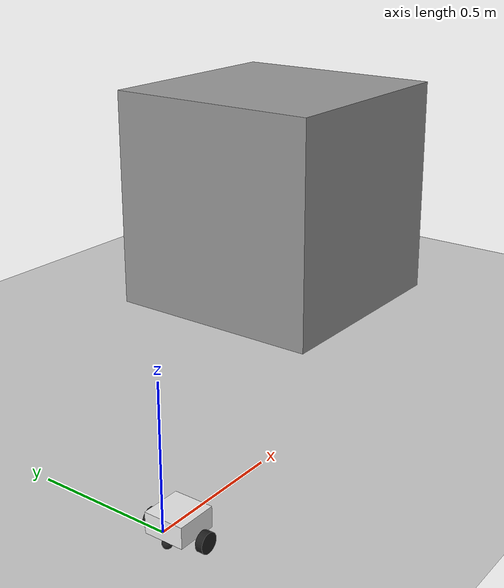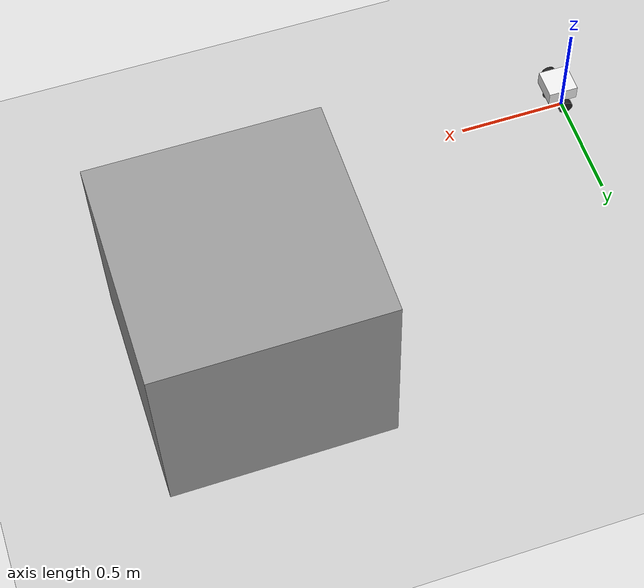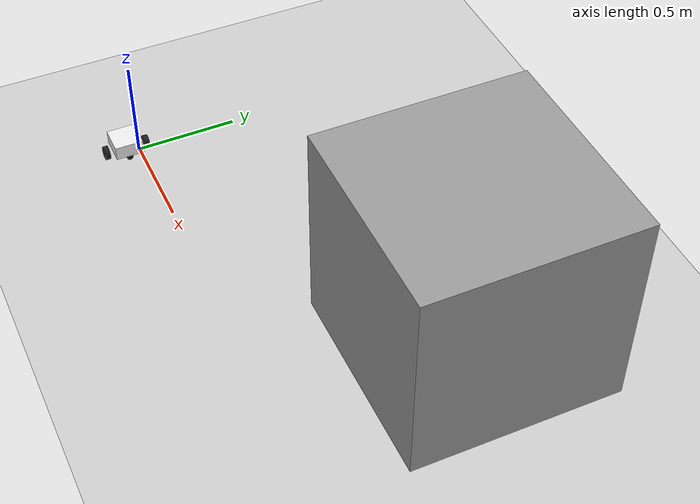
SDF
<sdf version="1.7">
 <world name="default">
  <light name="sun" type="directional">
   <pose>0 0 10 0 -0 0</pose>
   <diffuse>0.8 0.8 0.8 1</diffuse>
   <specular>0.2 0.2 0.2 1</specular>
   <attenuation>
    <range>1000</range>
    <constant>0.9</constant>
    <linear>0.01</linear>
    <quadratic>0.001</quadratic>
   </attenuation>
   <direction>-0.5 0.1 -0.9</direction>
   <spot><inner_angle>0</inner_angle><outer_angle>0</outer_angle><falloff>0</falloff></spot>
  </light>
  <model name="ground_plane">
   <static>1</static>
   <link name="link">
    <collision name="collision">
     <geometry><plane><normal>0 0 1</normal><size>100 100</size></plane></geometry>
     <surface>
      <contact><collide_bitmask>65535</collide_bitmask></contact>
      <friction><ode><mu>100</mu><mu2>50</mu2></ode></friction>
     </surface>
    </collision>
    <visual name="visual">
     <cast_shadows>0</cast_shadows>
     <geometry><plane><normal>0 0 1</normal><size>100 100</size></plane></geometry>
     <material>
      <script><uri>file://media/materials/scripts/gazebo.material</uri><name>Gazebo/Grey</name></script>
     </material>
    </visual>
   </link>
  </model>
  <gravity>0 0 -9.8</gravity>
  <magnetic_field>6e-06 2.3e-05 -4.2e-05</magnetic_field>
  <atmosphere type="adiabatic"/>
  <physics type="ode">
   <max_step_size>0.001</max_step_size>
   <real_time_factor>1</real_time_factor>
   <real_time_update_rate>1000</real_time_update_rate>
  </physics>
  <scene><ambient>0.4 0.4 0.4 1</ambient><background>0.7 0.7 0.7 1</background><shadows>1</shadows></scene>
  <audio><device>default</device></audio>
  <spherical_coordinates>
   <surface_model>EARTH_WGS84</surface_model>
   <latitude_deg>0</latitude_deg>
   <longitude_deg>0</longitude_deg>
   <elevation>0</elevation>
   <heading_deg>0</heading_deg>
  </spherical_coordinates>
  <model name="nanobot">
   <link name="base_link">
    <inertial>
     <pose>0 0 0.034591 0 -0 0</pose>
     <mass>0.922</mass>
     <inertia>
      <ixx>0.00190535</ixx>
      <ixy>0</ixy>
      <ixz>-4.33681e-19</ixz>
      <iyy>0.0019505</iyy>
      <iyz>0</iyz>
      <izz>0.00300658</izz>
     </inertia>
    </inertial>
    <collision name="base_link_fixed_joint_lump__body_link_collision">
     <pose>0 0 0.0355 0 -0 0</pose>
     <geometry><box><size>0.14 0.14 0.071</size></box></geometry>
    </collision>
    <collision name="base_link_fixed_joint_lump__back_caster_wheel_link_collision_1">
     <pose>-0.053125 0 -0.016875 0 -0 0</pose>
     <geometry><sphere><radius>0.016875</radius></sphere></geometry>
     <surface><friction><ode><mu>0.001</mu><mu2>0.001</mu2></ode></friction></surface>
    </collision>
    <collision name="base_link_fixed_joint_lump__front_caster_wheel_link_collision_2">
     <pose>0.053125 0 -0.016875 0 -0 0</pose>
     <geometry><sphere><radius>0.016875</radius></sphere></geometry>
     <surface><friction><ode><mu>0.001</mu><mu2>0.001</mu2></ode></friction></surface>
    </collision>
    <visual name="base_link_fixed_joint_lump__body_link_visual">
     <pose>0 0 0.0355 0 -0 0</pose>
     <geometry><box><size>0.14 0.14 0.071</size></box></geometry>
     <material>
      <script><name>Gazebo/White</name><uri>file://media/materials/scripts/gazebo.material</uri></script>
     </material>
    </visual>
    <visual name="base_link_fixed_joint_lump__back_caster_wheel_link_visual_1">
     <pose>-0.053125 0 -0.016875 0 -0 0</pose>
     <geometry><sphere><radius>0.016875</radius></sphere></geometry>
     <material>
      <script><name>Gazebo/Black</name><uri>file://media/materials/scripts/gazebo.material</uri></script>
     </material>
    </visual>
    <visual name="base_link_fixed_joint_lump__front_caster_wheel_link_visual_2">
     <pose>0.053125 0 -0.016875 0 -0 0</pose>
     <geometry><sphere><radius>0.016875</radius></sphere></geometry>
     <material>
      <script><name>Gazebo/Black</name><uri>file://media/materials/scripts/gazebo.material</uri></script>
     </material>
    </visual>
   </link>
   <joint name="left_wheel_joint" type="revolute">
    <pose relative_to="base_link">0 0.102 0 -1.5708 0 0</pose>
    <parent>base_link</parent>
    <child>left_wheel_link</child>
    <axis>
     <xyz>0 0 1</xyz>
     <limit><effort>100</effort><velocity>100</velocity><lower>-1e+16</lower><upper>1e+16</upper></limit>
     <dynamics><spring_reference>0</spring_reference><spring_stiffness>0</spring_stiffness></dynamics>
    </axis>
   </joint>
   <link name="left_wheel_link">
    <pose relative_to="left_wheel_joint">0 0 0 0 -0 0</pose>
    <inertial>
     <mass>0.028</mass>
     <inertia>
      <ixx>9.43177e-06</ixx>
      <ixy>0</ixy>
      <ixz>0</ixz>
      <iyy>9.43177e-06</iyy>
      <iyz>0</iyz>
      <izz>1.59469e-05</izz>
     </inertia>
    </inertial>
    <collision name="left_wheel_link_collision">
     <geometry><sphere><radius>0.03375</radius></sphere></geometry>
    </collision>
    <visual name="left_wheel_link_visual">
     <geometry><cylinder><length>0.025</length><radius>0.03375</radius></cylinder></geometry>
     <material>
      <script><name>Gazebo/Black</name><uri>file://media/materials/scripts/gazebo.material</uri></script>
     </material>
    </visual>
   </link>
   <joint name="right_wheel_joint" type="revolute">
    <pose relative_to="base_link">0 -0.102 0 1.5708 -0 0</pose>
    <parent>base_link</parent>
    <child>right_wheel_link</child>
    <axis>
     <xyz>0 0 -1</xyz>
     <limit><effort>100</effort><velocity>100</velocity><lower>-1e+16</lower><upper>1e+16</upper></limit>
     <dynamics><spring_reference>0</spring_reference><spring_stiffness>0</spring_stiffness></dynamics>
    </axis>
   </joint>
   <link name="right_wheel_link">
    <pose relative_to="right_wheel_joint">0 0 0 0 -0 0</pose>
    <inertial>
     <mass>0.028</mass>
     <inertia>
      <ixx>9.43177e-06</ixx>
      <ixy>0</ixy>
      <ixz>0</ixz>
      <iyy>9.43177e-06</iyy>
      <iyz>0</iyz>
      <izz>1.59469e-05</izz>
     </inertia>
    </inertial>
    <collision name="right_wheel_link_collision">
     <geometry><sphere><radius>0.03375</radius></sphere></geometry>
    </collision>
    <visual name="right_wheel_link_visual">
     <geometry><cylinder><length>0.025</length><radius>0.03375</radius></cylinder></geometry>
     <material>
      <script><name>Gazebo/Black</name><uri>file://media/materials/scripts/gazebo.material</uri></script>
     </material>
    </visual>
   </link>
   <static>0</static>
   <plugin name="gazebo_ros2_control" filename="libgazebo_ros2_control.so">
    <parameters>/home/ros_ws/install/nanobot_diffdrive/share/nanobot_diffdrive/config/gazebo_diffdrive_controllers.yaml</parameters>
   </plugin>
   <pose>1.9e-05 -0.063942 0.033744 5.7e-05 -0 -0.000336</pose>
  </model>
  <model name="unit_box">
   <pose>1.80232 0.872421 0.5 0 -0 0</pose>
   <link name="link">
    <inertial>
     <mass>1</mass>
     <inertia>
      <ixx>0.166667</ixx>
      <ixy>0</ixy>
      <ixz>0</ixz>
      <iyy>0.166667</iyy>
      <iyz>0</iyz>
      <izz>0.166667</izz>
     </inertia>
    </inertial>
    <collision name="collision"><geometry><box><size>1 1 1</size></box></geometry></collision>
    <visual name="visual">
     <geometry><box><size>1 1 1</size></box></geometry>
     <material>
      <script><name>Gazebo/Grey</name><uri>file://media/materials/scripts/gazebo.material</uri></script>
     </material>
    </visual>
   </link>
  </model>
 </world>
</sdf>
